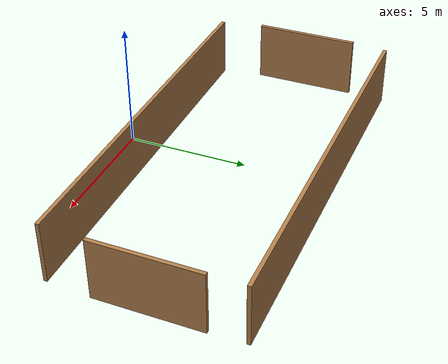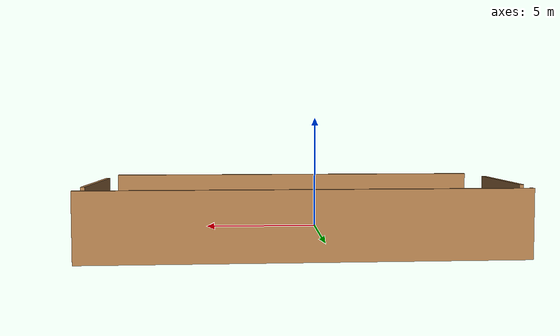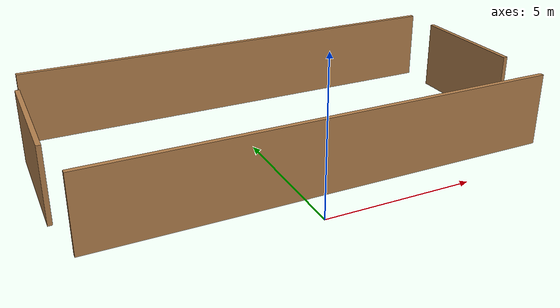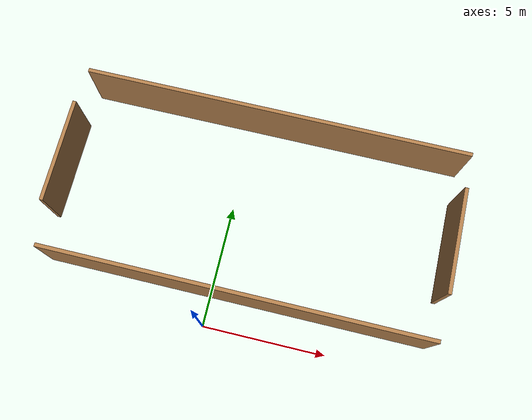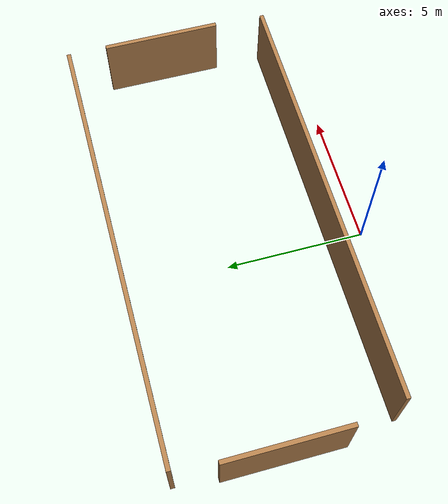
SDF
<?xml version='1.0'?>
<sdf version='1.7'>
  <model name='wall'>
    <pose>0.895112 4.39424 0 0 -0 0</pose>
    <link name='Wall_51'>
      <collision name='Wall_51_Collision'>
        <geometry>
          <box>
            <size>15.75 0.15 2.5</size>
          </box>
        </geometry>
        <pose>0 0 1.25 0 -0 0</pose>
      </collision>
      <visual name='Wall_51_Visual'>
        <pose>0 0 1.25 0 -0 0</pose>
        <geometry>
          <box>
            <size>15.75 0.15 2.5</size>
          </box>
        </geometry>
        <material>
          <script>
            <uri>file://media/materials/scripts/gazebo.material</uri>
            <name>Gazebo/Wood</name>
          </script>
          <ambient>1 1 1 1</ambient>
        </material>
        <meta>
          <layer>0</layer>
        </meta>
      </visual>
      <pose>0.075569 4.31924 0 0 -0 3.14159</pose>
    </link>
    <link name='Wall_54'>
      <collision name='Wall_54_Collision'>
        <geometry>
          <box>
            <size>15.5 0.15 2.5</size>
          </box>
        </geometry>
        <pose>0 0 1.25 0 -0 0</pose>
      </collision>
      <visual name='Wall_54_Visual'>
        <pose>0 0 1.25 0 -0 0</pose>
        <geometry>
          <box>
            <size>15.5 0.15 2.5</size>
          </box>
        </geometry>
        <material>
          <script>
            <uri>file://media/materials/scripts/gazebo.material</uri>
            <name>Gazebo/Wood</name>
          </script>
          <ambient>1 1 1 1</ambient>
        </material>
        <meta>
          <layer>0</layer>
        </meta>
      </visual>
      <pose>0.139041 -3.12563 0 0 -0 3.14159</pose>
    </link>
    <link name='Wall_57'>
      <collision name='Wall_57_Collision'>
        <geometry>
          <box>
            <size>4.25 0.15 2.5</size>
          </box>
        </geometry>
        <pose>0 0 1.25 0 -0 0</pose>
      </collision>
      <visual name='Wall_57_Visual'>
        <pose>0 0 1.25 0 -0 0</pose>
        <geometry>
          <box>
            <size>4.25 0.15 2.5</size>
          </box>
        </geometry>
        <material>
          <script>
            <uri>file://media/materials/scripts/gazebo.material</uri>
            <name>Gazebo/Wood</name>
          </script>
          <ambient>1 1 1 1</ambient>
        </material>
        <meta>
          <layer>0</layer>
        </meta>
      </visual>
      <pose>-7.9371 0.731049 0 0 -0 -1.5708</pose>
    </link>
    <link name='Wall_60'>
      <collision name='Wall_60_Collision'>
        <geometry>
          <box>
            <size>4.25 0.15 2.5</size>
          </box>
        </geometry>
        <pose>0 0 1.25 0 -0 0</pose>
      </collision>
      <visual name='Wall_60_Visual'>
        <pose>0 0 1.25 0 -0 0</pose>
        <geometry>
          <box>
            <size>4.25 0.15 2.5</size>
          </box>
        </geometry>
        <material>
          <script>
            <uri>file://media/materials/scripts/gazebo.material</uri>
            <name>Gazebo/Wood</name>
          </script>
          <ambient>1 1 1 1</ambient>
        </material>
        <meta>
          <layer>0</layer>
        </meta>
      </visual>
      <pose>7.9371 0.792577 0 0 -0 -1.5708</pose>
    </link>
    <static>1</static>
  </model>
</sdf>
